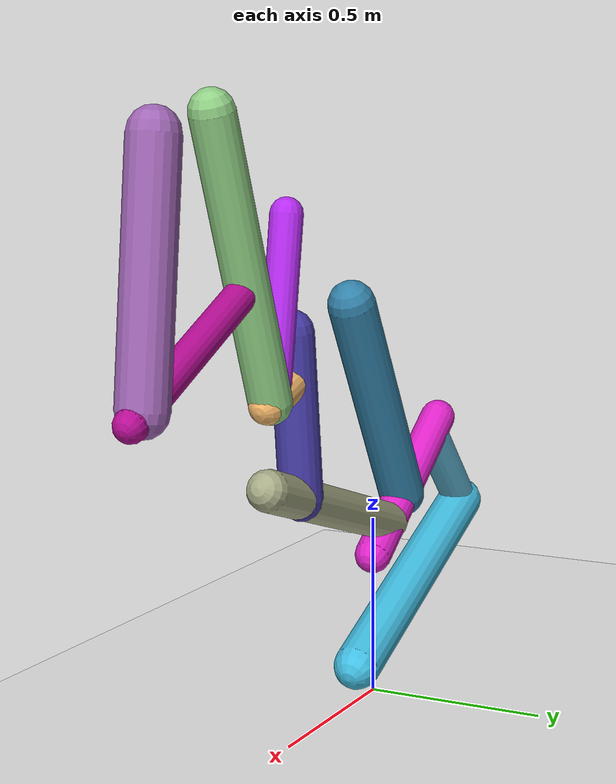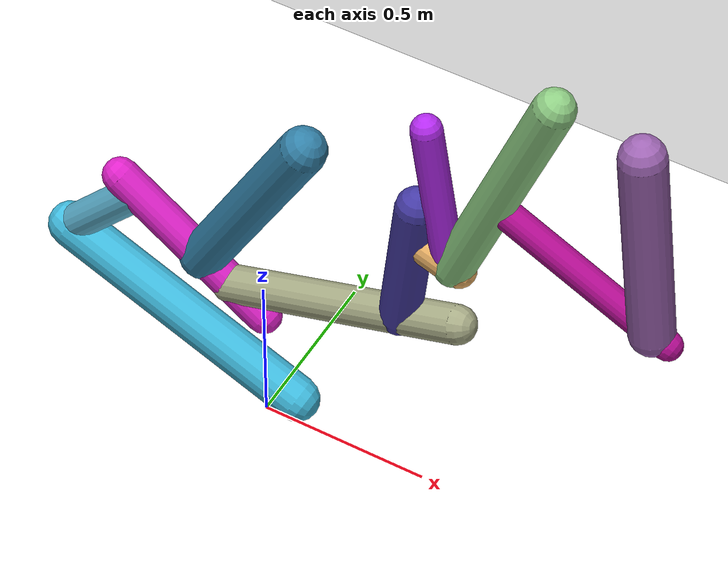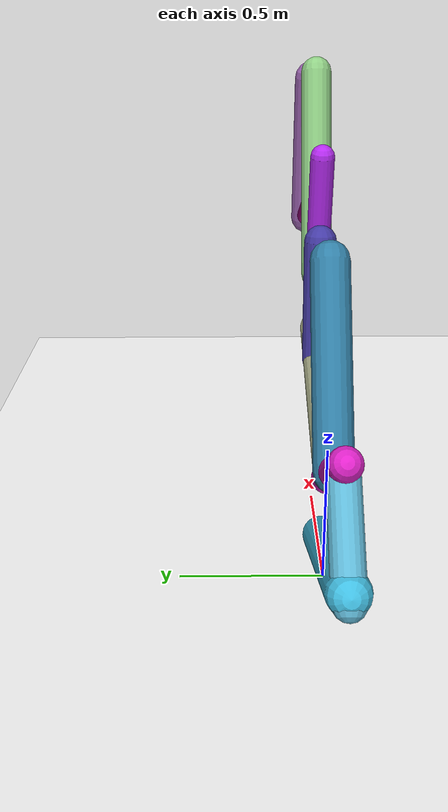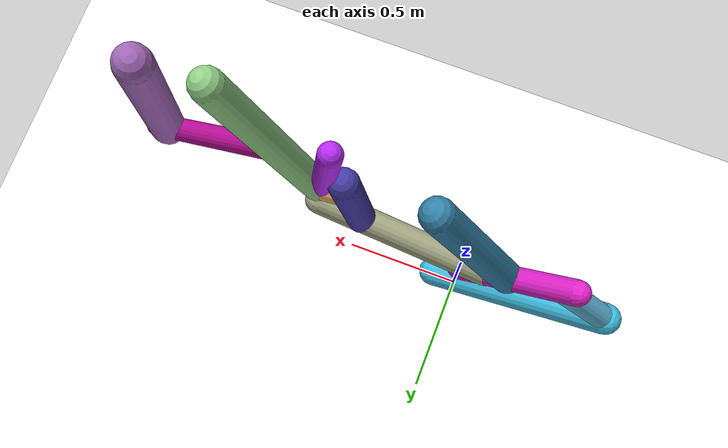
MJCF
<mujoco model="morphology">
  <option timestep="0.01"/>
  <default>
    <default class="/"/>
    <default class="0/"/>
    <default class="0/1/"/>
    <default class="0/1/2/"/>
    <default class="0/1/2/3/"/>
    <default class="0/1/2/3/4/"/>
    <default class="0/1/2/3/4/5/"/>
    <default class="0/1/2/3/4/5/6/"/>
    <default class="0/1/2/3/7/"/>
    <default class="0/8/"/>
    <default class="0/9/"/>
    <default class="0/9/10/"/>
  </default>
  <asset>
    <texture name="texplane" type="2d" builtin="checker" rgb1="0.10000000000000001 0.20000000000000001 0.29999999999999999" rgb2="0.20000000000000001 0.29999999999999999 0.40000000000000002" width="300" height="300"/>
    <material name="MatPlane" class="/" texture="texplane" texrepeat="20 20" specular="1" shininess="1" reflectance="0.5"/>
  </asset>
  <worldbody>
    <light name="//unnamed_light_0" class="/" directional="true" pos="0 0 1.5" dir="0 0 -1.3" cutoff="100" exponent="1" diffuse="1 1 1" specular="0.10000000000000001 0.10000000000000001 0.10000000000000001"/>
    <geom name="ground" class="/" type="plane" size="15 15 0.5" material="MatPlane" rgba="1 1 1 1"/>
    <site name="body" class="/" size="9.9999999999999995e-07 9.9999999999999995e-07 9.9999999999999995e-07" pos="0 0 0.39529154300689695"/>
    <body pos="0 0 0.39529154300689695" name="0/">
      <joint name="0/rootx/" class="/" type="slide" axis="1 0 0" limited="false" stiffness="0" armature="0" damping="0"/>
      <joint name="0/rootz/" class="/" type="slide" axis="0 0 1" limited="false" stiffness="0" armature="0" damping="0"/>
      <joint name="0/rooty/" class="/" type="hinge" axis="0 1 0" limited="false" stiffness="0" armature="0" damping="0"/>
      <geom name="0/geom" class="0/" type="capsule" contype="1" conaffinity="1" condim="3" size="0.051460999772626873" rgba="0.8692239346788363 0.131538854394182 0.78323937379415298 1" friction="0.59999999999999998 0.10000000000000001 0.10000000000000001" fromto="0 0 0 -0.44431593564756239 0 0.32166649000425029"/>
      <site name="0/end0" class="0/" size="0.0050000000000000001" pos="-0.44431593564756239 0 0.32166649000425029"/>
      <site name="0/attach1" class="0/" size="9.9999999999999995e-07 9.9999999999999995e-07 9.9999999999999995e-07" pos="-0.10228761980653589 0 0.074052035937230837"/>
      <body pos="-0.10228761980653589 0 0.074052035937230837" name="0/1/">
        <joint name="0/1/joint/" class="0/" type="hinge" axis="0 1 0" limited="true" range="-49.156254005556953 49.156254005556953"/>
        <geom name="0/1/geom" class="0/1/" type="capsule" contype="1" conaffinity="1" condim="3" size="0.054679525063197155" rgba="0.65029518222701876 0.66429263059549537 0.52255477767247294 1" friction="0.59999999999999998 0.10000000000000001 0.10000000000000001" fromto="0 0 0 0.69501381142059748 0 0.22812789488216345"/>
        <site name="0/1/end1" class="0/1/" size="0.0050000000000000001" pos="0.69501381142059748 0 0.22812789488216345"/>
        <site name="0/1/attach2" class="0/1/" size="9.9999999999999995e-07 9.9999999999999995e-07 9.9999999999999995e-07" pos="0.52409194748355636 0 0.17202534789882562"/>
        <body pos="0.52409194748355636 0 0.17202534789882562" name="0/1/2/">
          <joint name="0/1/2/joint/" class="0/1/" type="hinge" axis="0 1 0" limited="true" range="-37.953843706270568 37.953843706270568"/>
          <geom name="0/1/2/geom" class="0/1/2/" type="capsule" contype="1" conaffinity="1" condim="3" size="0.057662278500642941" rgba="0.26846665774619349 0.22838632131548975 0.64257944422761537 1" friction="0.59999999999999998 0.10000000000000001 0.10000000000000001" fromto="0 0 0 0.043033891926759882 0 0.43392088547190633"/>
          <site name="0/1/2/end2" class="0/1/2/" size="0.0050000000000000001" pos="0.043033891926759882 0 0.43392088547190633"/>
          <site name="0/1/2/attach3" class="0/1/2/" size="9.9999999999999995e-07 9.9999999999999995e-07 9.9999999999999995e-07" pos="0.031529672310737049 0 0.31792112484268559"/>
          <body pos="0.031529672310737049 0 0.31792112484268559" name="0/1/2/3/">
            <joint name="0/1/2/3/joint/" class="0/1/2/" type="hinge" axis="0 1 0" limited="true" range="-69.502982493023325 69.502982493023325"/>
            <geom name="0/1/2/3/geom" class="0/1/2/3/" type="capsule" contype="1" conaffinity="1" condim="3" size="0.048187335131496374" rgba="0.9426834903705047 0.71023560027411958 0.40948187495726052 1" friction="0.59999999999999998 0.10000000000000001 0.10000000000000001" fromto="0 0 0 0.13814280765346676 0 -0.04986899562376057"/>
            <site name="0/1/2/3/end3" class="0/1/2/3/" size="0.0050000000000000001" pos="0.13814280765346676 0 -0.04986899562376057"/>
            <site name="0/1/2/3/attach4" class="0/1/2/3/" size="9.9999999999999995e-07 9.9999999999999995e-07 9.9999999999999995e-07" pos="0.12311766427527561 0 -0.044444979548649434"/>
            <body pos="0.12311766427527561 0 -0.044444979548649434" name="0/1/2/3/4/">
              <joint name="0/1/2/3/4/joint/" class="0/1/2/3/" type="hinge" axis="0 1 0" limited="true" range="-69.534079557267901 69.534079557267901"/>
              <geom name="0/1/2/3/4/geom" class="0/1/2/3/4/" type="capsule" contype="1" conaffinity="1" condim="3" size="0.055662877390429633" rgba="0.55455077032462352 0.79801140619887534 0.51167085903421994 1" friction="0.59999999999999998 0.10000000000000001 0.10000000000000001" fromto="0 0 0 0.25307844078254993 0 0.69799003642398239"/>
              <site name="0/1/2/3/4/end4" class="0/1/2/3/4/" size="0.0050000000000000001" pos="0.25307844078254993 0 0.69799003642398239"/>
              <site name="0/1/2/3/4/attach5" class="0/1/2/3/4/" size="9.9999999999999995e-07 9.9999999999999995e-07 9.9999999999999995e-07" pos="0.10567609791174723 0 0.29145455141294152"/>
              <body pos="0.10567609791174723 0 0.29145455141294152" name="0/1/2/3/4/5/">
                <joint name="0/1/2/3/4/5/joint/" class="0/1/2/3/4/" type="hinge" axis="0 1 0" limited="true" range="-42.938428627956334 42.938428627956334"/>
                <geom name="0/1/2/3/4/5/geom" class="0/1/2/3/4/5/" type="capsule" contype="1" conaffinity="1" condim="3" size="0.040423087945256529" rgba="0.70386170644742507 0.044068818368497964 0.5718474263057034 1" friction="0.59999999999999998 0.10000000000000001 0.10000000000000001" fromto="0 0 0 0.4997335762843913 0 -0.24939217255440838"/>
                <site name="0/1/2/3/4/5/end5" class="0/1/2/3/4/5/" size="0.0050000000000000001" pos="0.4997335762843913 0 -0.24939217255440838"/>
                <site name="0/1/2/3/4/5/attach6" class="0/1/2/3/4/5/" size="9.9999999999999995e-07 9.9999999999999995e-07 9.9999999999999995e-07" pos="0.45380052228579798 0 -0.22646926988706975"/>
                <body pos="0.45380052228579798 0 -0.22646926988706975" name="0/1/2/3/4/5/6/">
                  <joint name="0/1/2/3/4/5/6/joint/" class="0/1/2/3/4/5/" type="hinge" axis="0 1 0" limited="true" range="-47.444575860638572 47.444575860638572"/>
                  <geom name="0/1/2/3/4/5/6/geom" class="0/1/2/3/4/5/6/" type="capsule" contype="1" conaffinity="1" condim="3" size="0.062111150702038397" rgba="0.61522977803621626 0.39203436200832031 0.69694802157161528 1" friction="0.59999999999999998 0.10000000000000001 0.10000000000000001" fromto="0 0 0 -0.068874441731287428 0 0.58734427328830296"/>
                  <site name="0/1/2/3/4/5/6/end6" class="0/1/2/3/4/5/6/" size="0.0050000000000000001" pos="-0.068874441731287428 0 0.58734427328830296"/>
                </body>
              </body>
            </body>
            <site name="0/1/2/3/attach7" class="0/1/2/3/" size="9.9999999999999995e-07 9.9999999999999995e-07 9.9999999999999995e-07" pos="0.10633872015343408 0 -0.03838784848843213"/>
            <body pos="0.10633872015343408 0 -0.03838784848843213" name="0/1/2/3/7/">
              <geom name="0/1/2/3/7/geom" class="0/1/2/3/7/" type="capsule" contype="1" conaffinity="1" condim="3" size="0.042345861970123688" rgba="0.70330442704802909 0.16414331085884726 0.93160994503898786 1" friction="0.59999999999999998 0.10000000000000001 0.10000000000000001" fromto="0 0 0 -0.072812123328147793 0 0.44804350258763215"/>
              <site name="0/1/2/3/7/end7" class="0/1/2/3/7/" size="0.0050000000000000001" pos="-0.072812123328147793 0 0.44804350258763215"/>
            </body>
          </body>
        </body>
      </body>
      <site name="0/attach8" class="0/" size="9.9999999999999995e-07 9.9999999999999995e-07 9.9999999999999995e-07" pos="-0.19076629620645782 0 0.13810696396114971"/>
      <body pos="-0.19076629620645782 0 0.13810696396114971" name="0/8/">
        <joint name="0/8/joint/" class="0/" type="hinge" axis="0 1 0" limited="true" range="-53.797660425199922 53.797660425199922"/>
        <geom name="0/8/geom" class="0/8/" type="capsule" contype="1" conaffinity="1" condim="3" size="0.065260971154782188" rgba="0.19434035176541897 0.50064570954109666 0.65297070386781519 1" friction="0.59999999999999998 0.10000000000000001 0.10000000000000001" fromto="0 0 0 0.32260247201976489 0 0.57933223609946705"/>
        <site name="0/8/end8" class="0/8/" size="0.0050000000000000001" pos="0.32260247201976489 0 0.57933223609946705"/>
      </body>
      <site name="0/attach9" class="0/" size="9.9999999999999995e-07 9.9999999999999995e-07 9.9999999999999995e-07" pos="-0.39131630159076591 0 0.28329693156445956"/>
      <body pos="-0.39131630159076591 0 0.28329693156445956" name="0/9/">
        <joint name="0/9/joint/" class="0/" type="hinge" axis="0 1 0" limited="true" range="-30.997659684181912 30.997659684181912"/>
        <geom name="0/9/geom" class="0/9/" type="capsule" contype="1" conaffinity="1" condim="3" size="0.050992421251135941" rgba="0.36920033328833957 0.70922524373388007 0.82637758037222664 1" friction="0.59999999999999998 0.10000000000000001 0.10000000000000001" fromto="0 0 0 -0.24942068503109427 0 -0.26976180750215778"/>
        <site name="0/9/end9" class="0/9/" size="0.0050000000000000001" pos="-0.24942068503109427 0 -0.26976180750215778"/>
        <site name="0/9/attach10" class="0/9/" size="9.9999999999999995e-07 9.9999999999999995e-07 9.9999999999999995e-07" pos="-0.23248245395957207 0 -0.25144220490314556"/>
        <body pos="-0.23248245395957207 0 -0.25144220490314556" name="0/9/10/">
          <joint name="0/9/10/joint/" class="0/9/" type="hinge" axis="0 1 0" limited="true" range="-35.630225526291987 35.630225526291987"/>
          <geom name="0/9/10/geom" class="0/9/10/" type="capsule" contype="1" conaffinity="1" condim="3" size="0.065586019576075447" rgba="0.25095666698281716 0.73400161465879254 0.87321541366313216 1" friction="0.59999999999999998 0.10000000000000001 0.10000000000000001" fromto="0 0 0 0.72497205874421544 0 -0.32714626508572175"/>
          <site name="0/9/10/end10" class="0/9/10/" size="0.0050000000000000001" pos="0.72497205874421544 0 -0.32714626508572175"/>
        </body>
      </body>
      <camera name="0/side" class="0/" mode="trackcom" pos="0.40000000000000002 -4 0.20000000000000001" quat="0.70699999999999996 0.70699999999999996 0 0"/>
    </body>
  </worldbody>
  <actuator>
    <motor name="0/1/motor" class="0/1/" ctrllimited="true" ctrlrange="-1 1" gear="85" joint="0/1/joint/"/>
    <motor name="0/1/2/motor" class="0/1/2/" ctrllimited="true" ctrlrange="-1 1" gear="71" joint="0/1/2/joint/"/>
    <motor name="0/1/2/3/motor" class="0/1/2/3/" ctrllimited="true" ctrlrange="-1 1" gear="63" joint="0/1/2/3/joint/"/>
    <motor name="0/1/2/3/4/motor" class="0/1/2/3/4/" ctrllimited="true" ctrlrange="-1 1" gear="86" joint="0/1/2/3/4/joint/"/>
    <motor name="0/1/2/3/4/5/motor" class="0/1/2/3/4/5/" ctrllimited="true" ctrlrange="-1 1" gear="68" joint="0/1/2/3/4/5/joint/"/>
    <motor name="0/1/2/3/4/5/6/motor" class="0/1/2/3/4/5/6/" ctrllimited="true" ctrlrange="-1 1" gear="67" joint="0/1/2/3/4/5/6/joint/"/>
    <motor name="0/8/motor" class="0/8/" ctrllimited="true" ctrlrange="-1 1" gear="70" joint="0/8/joint/"/>
    <motor name="0/9/motor" class="0/9/" ctrllimited="true" ctrlrange="-1 1" gear="86" joint="0/9/joint/"/>
    <motor name="0/9/10/motor" class="0/9/10/" ctrllimited="true" ctrlrange="-1 1" gear="89" joint="0/9/10/joint/"/>
  </actuator>
  <sensor>
    <subtreelinvel name="velocity" body="0/"/>
  </sensor>
</mujoco>
